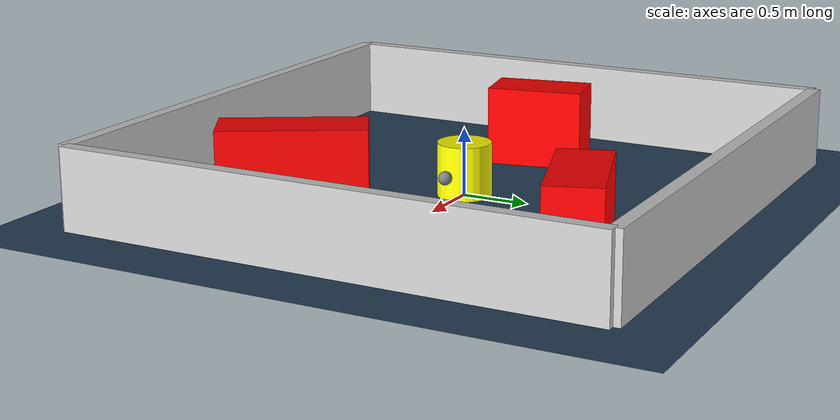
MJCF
<?xml version="1.0" ?>
<mujoco model="generated_environment">
  <option timestep="0.01" integrator="RK4" cone="elliptic"/>
  <default>
    <geom density="1"/>
  </default>
  <asset>
    <texture builtin="gradient" height="3072" rgb1="0.3 0.5 0.7" rgb2="0 0 0" type="skybox" width="512"/>
    <texture builtin="checker" height="300" mark="edge" markrgb="0.8 0.8 0.8" name="groundplane" rgb1="0.2 0.3 0.4" rgb2="0.1 0.2 0.3" type="2d" width="300"/>
    <material name="groundplane" reflectance="0.2" texrepeat="5 5" texture="groundplane" texuniform="true"/>
    <material name="robot" rgba="0.0 1.0 0.0 1"/>
  </asset>
  <worldbody>
    <light dir="0 0 -1" directional="true" pos="0 0 1.5"/>
    <geom condim="4" friction="1.0 0.005 0.001" material="groundplane" name="floor" size="0 0 0.05" type="plane"/>
    <body name="walls">
      <geom name="wall_1" condim="4" pos="-2.0 0.0 0.3" rgba="0.800000011920929 0.800000011920929 0.800000011920929 1.0" size="0.05 2.0 0.3" type="box"/>
      <geom name="wall_2" condim="4" pos="2.0 0.0 0.3" rgba="0.800000011920929 0.800000011920929 0.800000011920929 1.0" size="0.05 2.0 0.3" type="box"/>
      <geom name="wall_3" condim="4" pos="0.0 -2.0 0.3" rgba="0.800000011920929 0.800000011920929 0.800000011920929 1.0" size="2.0 0.05 0.3" type="box"/>
      <geom name="wall_4" condim="4" pos="0.0 2.0 0.3" rgba="0.800000011920929 0.800000011920929 0.800000011920929 1.0" size="2.0 0.05 0.3" type="box"/>
    </body>
    <body name="robot">
      <joint name="joint_x" type="slide" pos="0 0 0" axis="1 0 0"/>
      <joint name="joint_y" type="slide" pos="0 0 0" axis="0 1 0"/>
      <geom name="robot" type="sphere" pos="0.3 0.0 0.2" size="0.05" mass="5." friction="1.0 0.005 0.0001" condim="4" rgba="0.5 0.5 0.5 1.0"/>
      <site name="sensor_ball"/>
    </body>
    <body name="obstacle_movable_1">
      <geom name="obstacle_movable_1" condim="4" pos="0.0 0.0 0.2" euler="0 0 0.0" friction="1.0 0.005 0.001" rgba="1.0 1.0 0.0 1.0" size="0.2 0.2 0.0" type="cylinder" mass="0.1"/>
      <joint type="free"/>
    </body>
    <body name="obstacle_2_static">
      <geom name="obstacle_2_static" condim="4" pos="0.9225699487595365 1.3099841925554958 0.3" euler="0 0 18.42535902793934" friction="1.0 0.005 0.001" rgba="1 0 0 1" size="0.45990665675201997 0.2 0.3" type="box"/>
    </body>
    <body name="obstacle_3_static">
      <geom name="obstacle_3_static" condim="4" pos="-1.1324556673028 0.07419460148766421 0.3" euler="0 0 280.92715768249025" friction="1.0 0.005 0.001" rgba="1 0 0 1" size="0.36366242250658865 0.2 0.3" type="box"/>
    </body>
    <body name="obstacle_4_static">
      <geom name="obstacle_4_static" condim="4" pos="0.7944645218215336 -0.9588906133287339 0.3" euler="0 0 299.95636271687493" friction="1.0 0.005 0.001" rgba="1 0 0 1" size="0.5367286099453139 0.2 0.3" type="box"/>
    </body>
  </worldbody>
  <actuator>
    <motor name="actuator_x" joint="joint_x" gear="1" ctrlrange="-1 1"/>
    <motor name="actuator_y" joint="joint_y" gear="1" ctrlrange="-1 1"/>
  </actuator>
</mujoco>
